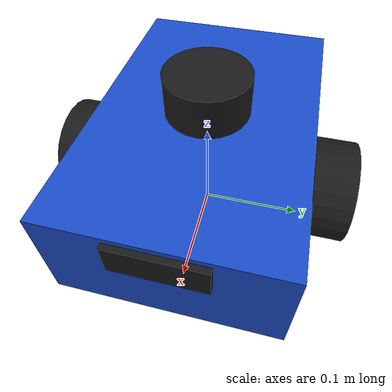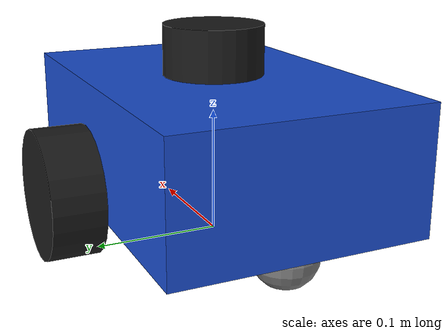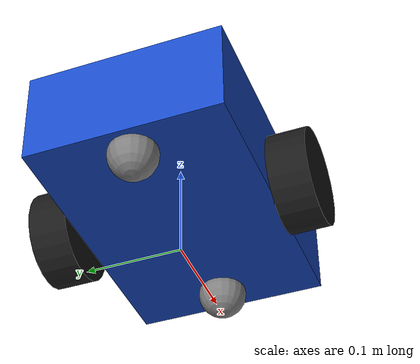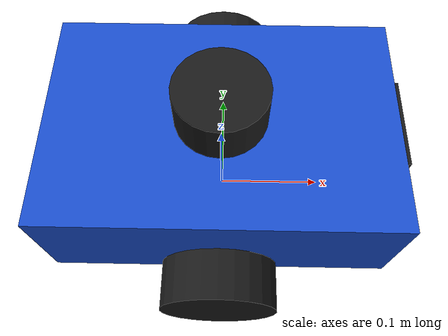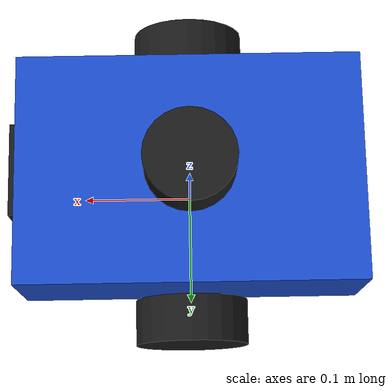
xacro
<?xml version="1.0"?>
<robot name="ab_bot" xmlns:xacro="http://www.ros.org/wiki/xacro">

  <material name="blue"><color rgba="0.1 0.3 0.8 1"/></material>
  <material name="black"><color rgba="0.1 0.1 0.1 1"/></material>
  <material name="grey"><color rgba="0.5 0.5 0.5 1"/></material>

  <xacro:macro name="small_inertial" params="m">
    <inertial><mass value="${m}"/><inertia ixx="1e-5" ixy="0" ixz="0" iyy="1e-5" iyz="0" izz="1e-5"/></inertial>
  </xacro:macro>

  <xacro:macro name="wheel" params="name y">
    <link name="${name}_wheel">
      <visual><origin rpy="${pi/2} 0 0"/><geometry><cylinder radius="0.05" length="0.04"/></geometry><material name="black"/></visual>
      <collision><origin rpy="${pi/2} 0 0"/><geometry><cylinder radius="0.05" length="0.04"/></geometry></collision>
      <inertial><mass value="0.3"/><inertia ixx="0.00023" ixy="0" ixz="0" iyy="0.000375" iyz="0" izz="0.00023"/></inertial>
    </link>
    <joint name="${name}_wheel_joint" type="continuous">
      <parent link="base_link"/><child link="${name}_wheel"/>
      <origin xyz="0 ${y} 0"/><axis xyz="0 1 0"/>
    </joint>
    <gazebo reference="${name}_wheel"><mu1>1.0</mu1><mu2>1.0</mu2></gazebo>
  </xacro:macro>

  <xacro:macro name="caster" params="name x">
    <link name="${name}_caster">
      <collision><geometry><sphere radius="0.025"/></geometry></collision>
      <visual><geometry><sphere radius="0.025"/></geometry><material name="grey"/></visual>
      <xacro:small_inertial m="0.05"/>
    </link>
    <joint name="${name}_caster_joint" type="fixed">
      <parent link="base_link"/><child link="${name}_caster"/><origin xyz="${x} 0 -0.025"/>
    </joint>
    <gazebo reference="${name}_caster"><mu1>0.0</mu1><mu2>0.0</mu2></gazebo>
  </xacro:macro>

  <!-- корпус -->
  <link name="base_footprint"/>
  <joint name="footprint_joint" type="fixed">
    <parent link="base_footprint"/><child link="base_link"/><origin xyz="0 0 0.05"/>
  </joint>
  <link name="base_link">
    <visual><origin xyz="0 0 0.03"/><geometry><box size="0.30 0.20 0.10"/></geometry><material name="blue"/></visual>
    <collision><origin xyz="0 0 0.03"/><geometry><box size="0.30 0.20 0.10"/></geometry></collision>
    <inertial><origin xyz="0 0 0.03"/><mass value="3.0"/>
      <inertia ixx="0.0125" ixy="0" ixz="0" iyy="0.025" iyz="0" izz="0.0325"/></inertial>
  </link>

  <xacro:wheel name="left" y="0.125"/>
  <xacro:wheel name="right" y="-0.125"/>
  <xacro:caster name="front" x="0.12"/>
  <xacro:caster name="rear" x="-0.12"/>

  <!-- 2D лидар -->
  <link name="lidar_link">
    <visual><geometry><cylinder radius="0.04" length="0.04"/></geometry><material name="black"/></visual>
    <xacro:small_inertial m="0.1"/>
  </link>
  <joint name="lidar_joint" type="fixed">
    <parent link="base_link"/><child link="lidar_link"/><origin xyz="0 0 0.10"/>
  </joint>

  <!-- depth-камера (аналог Orbbec Astra) -->
  <link name="camera_link">
    <visual><geometry><box size="0.03 0.08 0.03"/></geometry><material name="black"/></visual>
    <xacro:small_inertial m="0.1"/>
  </link>
  <joint name="camera_joint" type="fixed">
    <parent link="base_link"/><child link="camera_link"/><origin xyz="0.14 0 0.06"/>
  </joint>
  <link name="camera_depth_optical_frame"/>
  <joint name="camera_optical_joint" type="fixed">
    <parent link="camera_link"/><child link="camera_depth_optical_frame"/>
    <origin rpy="${-pi/2} 0 ${-pi/2}"/>
  </joint>

  <!-- GPS -->
  <link name="gps_link">
    <visual><geometry><box size="0.04 0.04 0.01"/></geometry><material name="grey"/></visual>
    <xacro:small_inertial m="0.05"/>
  </link>
  <joint name="gps_joint" type="fixed">
    <parent link="base_link"/>
    <child link="gps_link"/>
    <origin xyz="0 0 0.10"/>
  </joint>

  <!-- Gazebo: привод и joint states -->
  <gazebo>
    <plugin name="diff_drive" filename="libgazebo_ros_diff_drive.so">
      <update_rate>30</update_rate>
      <left_joint>left_wheel_joint</left_joint>
      <right_joint>right_wheel_joint</right_joint>
      <wheel_separation>0.25</wheel_separation>
      <wheel_diameter>0.10</wheel_diameter>
      <max_wheel_torque>20</max_wheel_torque>
      <max_wheel_acceleration>2.0</max_wheel_acceleration>
      <publish_odom>true</publish_odom>
      <publish_odom_tf>true</publish_odom_tf>
      <publish_wheel_tf>false</publish_wheel_tf>
      <odometry_frame>odom</odometry_frame>
      <robot_base_frame>base_footprint</robot_base_frame>
    </plugin>
    <plugin name="joint_states" filename="libgazebo_ros_joint_state_publisher.so">
      <update_rate>20</update_rate>
      <joint_name>left_wheel_joint</joint_name>
      <joint_name>right_wheel_joint</joint_name>
    </plugin>
  </gazebo>

  <!-- Лидар -> /scan -->
  <gazebo reference="lidar_link">
    <sensor name="lidar" type="ray">
      <always_on>true</always_on><visualize>false</visualize><update_rate>10</update_rate>
      <ray>
        <scan><horizontal><samples>360</samples><resolution>1</resolution>
          <min_angle>-3.14159</min_angle><max_angle>3.14159</max_angle></horizontal></scan>
        <range><min>0.12</min><max>6.0</max><resolution>0.01</resolution></range>
        <noise><type>gaussian</type><mean>0.0</mean><stddev>0.01</stddev></noise>
      </ray>
      <plugin name="lidar_plugin" filename="libgazebo_ros_ray_sensor.so">
        <ros><remapping>~/out:=scan</remapping></ros>
        <output_type>sensor_msgs/LaserScan</output_type>
        <frame_name>lidar_link</frame_name>
      </plugin>
    </sensor>
  </gazebo>

  <!-- Depth-камера -> /astra/image_raw, /astra/depth/image_raw, /astra/points -->
  <gazebo reference="camera_link">
    <sensor name="astra" type="depth">
      <always_on>true</always_on><visualize>false</visualize><update_rate>10</update_rate>
      <camera>
        <horizontal_fov>1.0472</horizontal_fov>
        <image><width>160</width><height>120</height><format>R8G8B8</format></image>
        <clip><near>0.6</near><far>5.0</far></clip>
      </camera>
      <plugin name="astra_plugin" filename="libgazebo_ros_camera.so">
        <camera_name>astra</camera_name>
        <frame_name>camera_depth_optical_frame</frame_name>
        <min_depth>0.6</min_depth>
        <max_depth>5.0</max_depth>
      </plugin>
    </sensor>
  </gazebo>

  <!-- GPS -> /gps/fix -->
  <gazebo reference="gps_link">
    <sensor name="gps" type="gps">
      <always_on>true</always_on><update_rate>5</update_rate>
      <plugin name="gps_plugin" filename="libgazebo_ros_gps_sensor.so">
        <ros><remapping>~/out:=gps/fix</remapping></ros>
        <frame_name>gps_link</frame_name>
      </plugin>
    </sensor>
  </gazebo>
</robot>
